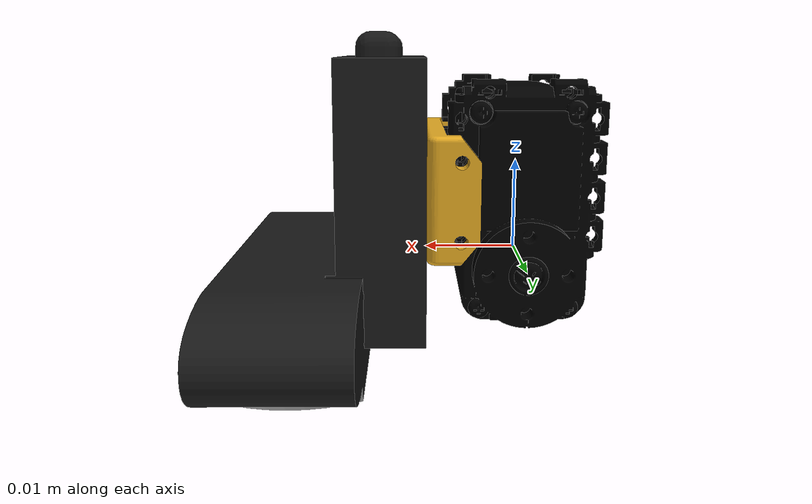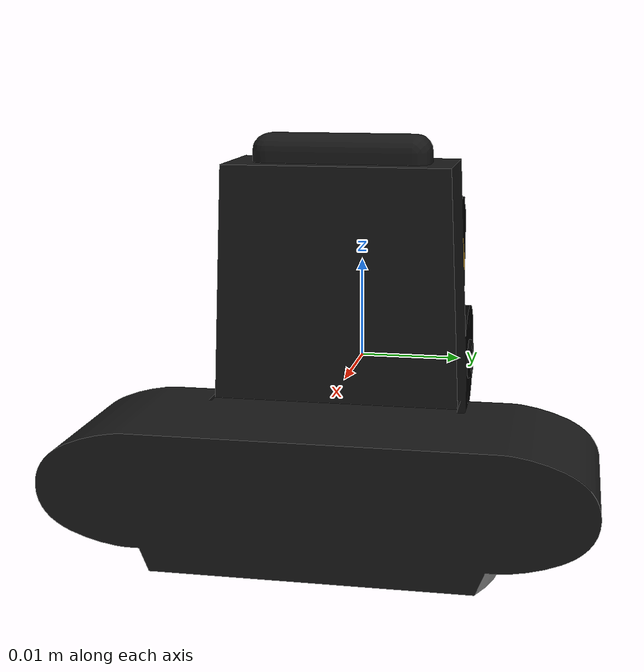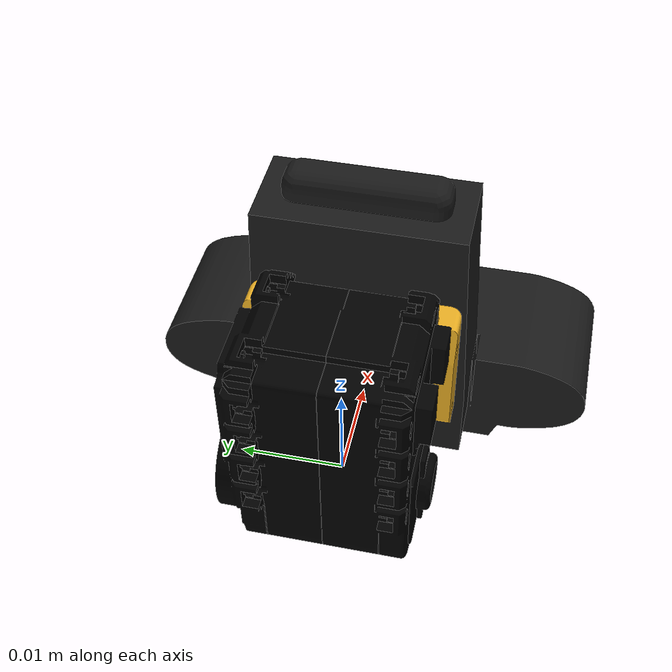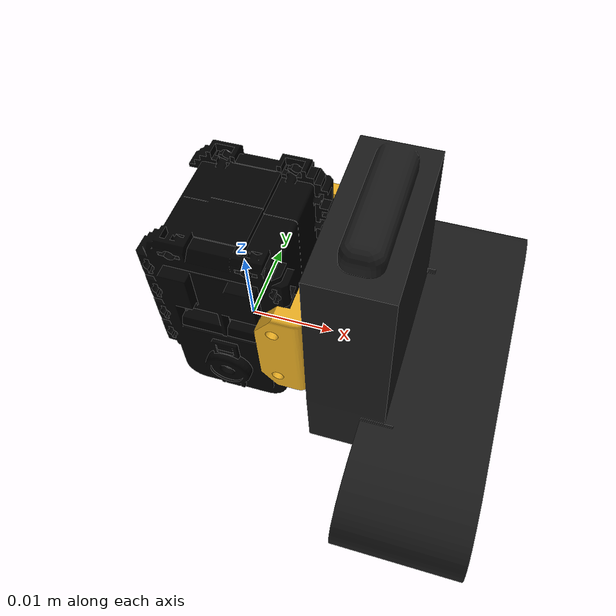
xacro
<?xml version="1.0"?>

<robot xmlns:xacro="http://www.ros.org/wiki/xacro" name="front_camera">
  <xacro:include filename="$(find logi_camera)/urdf/camera.gazebo"/>
  <!-- Camera -->
  <link name="base_link">
  </link>
  <link name="camera_link">
    <visual>
      <geometry>
        <mesh filename="package://logi_camera/meshes/head.dae" scale=".5 .5 .5"/>
      </geometry>
    </visual>
    <collision>
      <geometry>
        <mesh filename="package://logi_camera/meshes/head.stl" scale=".5 .5 .5"/>
      </geometry>
    </collision>
    <inertial>
      <mass value="0.10"/>
      <inertia ixx="0.03" ixy="0.0" ixz="0.0" iyy="0.03" iyz="0.0" izz="0.03"/>
    </inertial>
  </link>
  <joint name="camera_joint" type="fixed">
    <parent link="base_link"/>
    <child link="camera_link"/>
    <origin xyz="0 0 0" rpy="0 1.5708  0"/>
  </joint>

</robot>
